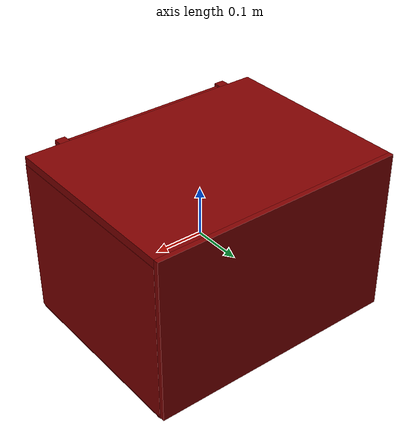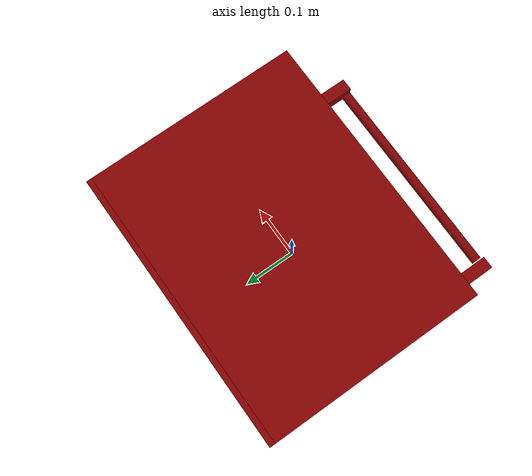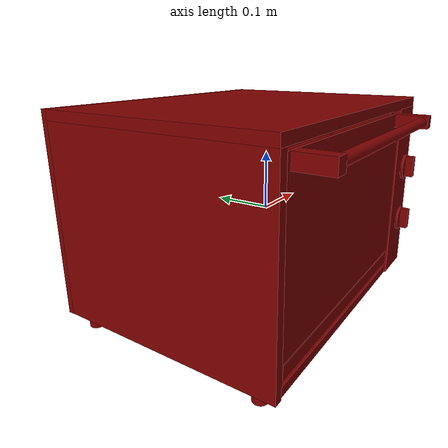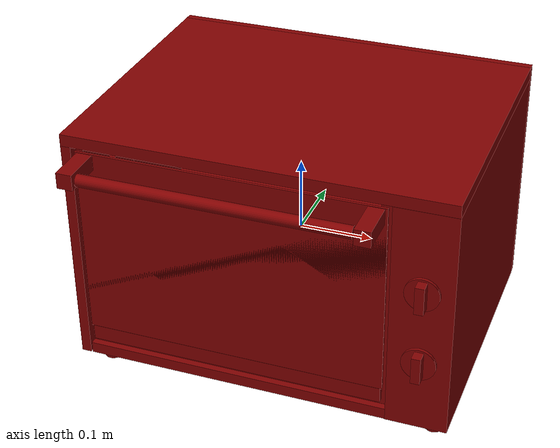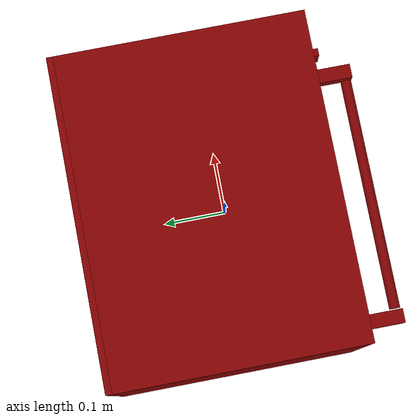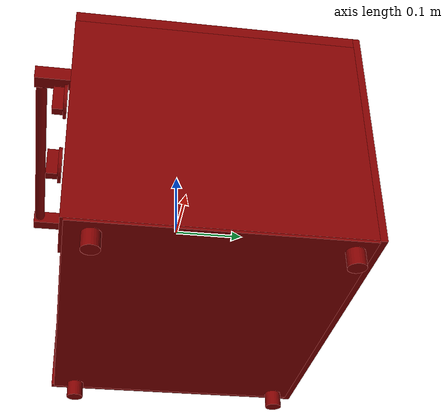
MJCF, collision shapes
<?xml version='1.0' encoding='UTF-8'?>
<mujoco model="model">
  <option timestep="0.002" gravity="0.0 0.0 -9.81"/>
  <compiler angle="radian"/>
  <asset>
    <mesh file="visuals/door.obj" name="door_vis"/>
    <mesh file="visuals/knob_temp.obj" name="knob_temp_vis"/>
    <mesh file="visuals/knob_time.obj" name="knob_time_vis"/>
    <mesh file="visuals/rack0.obj" name="rack0_vis"/>
    <mesh file="visuals/Body001.obj" name="Body001_vis"/>
    <mesh file="visuals/window.obj" name="window_vis"/>
    <texture file="visuals/T_BC001.png" name="Body001_material" type="2d"/>
    <material name="Body001_material" rgba="1 1 1 1.0" texture="Body001_material" shininess="1" specular="1"/>
    <texture file="visuals/T_BC001.png" name="door_material" type="2d"/>
    <material name="door_material" rgba="1 1 1 1.0" texture="door_material" shininess="1" specular="1"/>
    <material name="window_material" rgba="0.027718450874090195 0.027718450874090195 0.027718450874090195 0.75" shininess="0.2512328028678894" specular="0.3103448502657381"/>
    <texture file="visuals/T_BC001.png" name="knob_temp_material" type="2d"/>
    <material name="knob_temp_material" rgba="1 1 1 1.0" texture="knob_temp_material" shininess="0.5" specular="0.5"/>
    <texture file="visuals/T_BC001.png" name="knob_time_material" type="2d"/>
    <material name="knob_time_material" rgba="1 1 1 1.0" texture="knob_time_material" shininess="0.5" specular="0.5"/>
    <texture file="visuals/T_BC001.png" name="rack0_material" type="2d"/>
    <material name="rack0_material" rgba="1 1 1 1.0" texture="rack0_material" shininess="3" specular="3"/>
  </asset>
  <default>
    <default class="visual">
      <geom conaffinity="0" contype="0" group="1" type="mesh"/>
    </default>
    <default class="collision">
      <geom group="0" rgba="0.5 0 0 0.5"/>
    </default>
    <default class="spawn">
      <geom group="0" rgba="1 1 1 0.5" contype="0" conaffinity="0"/>
      <site group="0" rgba="1 1 1 0.5"/>
    </default>
    <default class="region">
      <geom group="1" conaffinity="0" contype="0" rgba="0 1 0 0"/>
    </default>
  </default>
  <worldbody>
    <body>
      <body name="object">
        <geom mesh="Body001_vis" type="mesh" solimp="0.998 0.998 0.001" solref="0.001 1" friction="0.95 0.3 0.1" class="visual" material="Body001_material"/>
        <geom class="collision" type="box" pos="-0.0007457605679519475 0.2223813831806183 0.013563400134444237" size="0.25858113169670105 0.005080300383269787 0.1686781346797943" quat="1.0 0.0 0.0 0.0"/>
        <geom class="collision" type="box" pos="-0.0007457605679519475 0.021873734891414642 0.17399555444717407" size="0.25858113169670105 0.19542735815048218 0.008245944045484066" quat="1.0 0.0 0.0 0.0"/>
        <geom class="collision" type="box" pos="-0.25257155299186707 0.021873734891414642 0.005647214595228434" size="0.006755355279892683 0.19542735815048218 0.16010236740112305" quat="1.0 0.0 0.0 0.0"/>
        <geom class="collision" type="box" pos="0.006009556353092194 0.02381673827767372 -0.14971891045570374" size="0.25182580947875977 0.1934843510389328 0.00789948832243681" quat="1.0 0.0 0.0 0.0"/>
        <geom class="collision" type="box" pos="0.21715101599693298 0.021620839834213257 0.005647215526551008" size="0.041074566543102264 0.19568024575710297 0.16010236740112305" quat="1.0 0.0 0.0 0.0"/>
        <geom class="collision" type="box" pos="-0.24223238229751587 0.028575051575899124 0.005647214595228434" size="0.006755355279892683 0.1887260526418686 0.16010236740112305" quat="1.0 0.0 0.0 0.0"/>
        <geom class="collision" type="box" pos="0.17393207550048828 0.028575051575899124 0.005647214595228434" size="0.014827726408839226 0.1887260526418686 0.16010236740112305" quat="1.0 0.0 0.0 0.0"/>
        <geom class="collision" type="box" pos="-0.03818636015057564 0.028575021773576736 0.16610950231552124" size="0.006755355279892683 0.1887260526418686 0.20359595119953156" quat="0.70710688829422 -4.7503021960437763e-08 0.7071066498756409 4.750300774958305e-08"/>
        <geom class="collision" type="box" pos="-0.03818632289767265 0.028575077652931213 -0.14332428574562073" size="0.010608116164803505 0.1887260526418686 0.20359595119953156" quat="0.70710688829422 -4.7503021960437763e-08 0.7071066498756409 4.750300774958305e-08"/>
        <geom class="collision" type="box" pos="-0.2320302426815033 -0.08677582442760468 0.008008688688278198" size="0.005274172406643629 0.04465195909142494 0.01684456877410412" quat="1.0 0.0 0.0 0.0"/>
        <geom class="collision" type="box" pos="-0.2320302426815033 0.14809246361255646 0.008008688688278198" size="0.005274172406643629 0.04465195909142494 0.01684456877410412" quat="1.0 0.0 0.0 0.0"/>
        <geom class="collision" type="box" pos="-0.2320302426815033 -0.08677582442760468 0.0527912974357605" size="0.005274172406643629 0.04465195909142494 0.01684456877410412" quat="1.0 0.0 0.0 0.0"/>
        <geom class="collision" type="box" pos="-0.2320302426815033 0.14809246361255646 0.0527912974357605" size="0.005274172406643629 0.04465195909142494 0.01684456877410412" quat="1.0 0.0 0.0 0.0"/>
        <geom class="collision" type="box" pos="-0.2320302426815033 -0.0800725668668747 0.09709605574607849" size="0.005274171940982342 0.035627953708171844 0.01684456877410412" quat="1.0 0.0 0.0 0.0"/>
        <geom class="collision" type="box" pos="-0.2320302426815033 0.1364857405424118 0.09709605574607849" size="0.005274171940982342 0.03220980614423752 0.01684456877410412" quat="1.0 0.0 0.0 0.0"/>
        <geom class="collision" type="box" pos="-0.2320302426815033 0.14809246361255646 -0.040287621319293976" size="0.005274172406643629 0.04465195909142494 0.01684456877410412" quat="7.549790126404332e-08 -1.0 -2.220446049250313e-16 -3.8083412071160693e-31"/>
        <geom class="collision" type="box" pos="-0.2320302426815033 -0.08677582442760468 -0.04028766602277756" size="0.005274172406643629 0.04465195909142494 0.01684456877410412" quat="7.549790126404332e-08 -1.0 -2.220446049250313e-16 -3.8083412071160693e-31"/>
        <geom class="collision" type="box" pos="-0.2320302426815033 0.14138920605182648 -0.08459238708019257" size="0.005274171940982342 0.035627953708171844 0.01684456877410412" quat="7.549790126404332e-08 -1.0 -2.220446049250313e-16 -3.8083412071160693e-31"/>
        <geom class="collision" type="box" pos="-0.2320302426815033 -0.07516910135746002 -0.08459241688251495" size="0.005274171940982342 0.03220980614423752 0.01684456877410412" quat="7.549790126404332e-08 -1.0 -2.220446049250313e-16 -3.8083412071160693e-31"/>
        <geom class="collision" type="box" pos="0.15681472420692444 -0.08677582442760468 0.008008688688278198" size="0.005274172406643629 0.04465195909142494 0.01684456877410412" quat="1.0 0.0 0.0 0.0"/>
        <geom class="collision" type="box" pos="0.15681472420692444 0.14809246361255646 0.008008688688278198" size="0.005274172406643629 0.04465195909142494 0.01684456877410412" quat="1.0 0.0 0.0 0.0"/>
        <geom class="collision" type="box" pos="0.15681472420692444 -0.08677582442760468 0.0527912974357605" size="0.005274172406643629 0.04465195909142494 0.01684456877410412" quat="1.0 0.0 0.0 0.0"/>
        <geom class="collision" type="box" pos="0.15681472420692444 0.14809246361255646 0.0527912974357605" size="0.005274172406643629 0.04465195909142494 0.01684456877410412" quat="1.0 0.0 0.0 0.0"/>
        <geom class="collision" type="box" pos="0.15681472420692444 -0.0800725668668747 0.09709605574607849" size="0.005274171940982342 0.035627953708171844 0.01684456877410412" quat="1.0 0.0 0.0 0.0"/>
        <geom class="collision" type="box" pos="0.15681472420692444 0.1364857405424118 0.09709605574607849" size="0.005274171940982342 0.03220980614423752 0.01684456877410412" quat="1.0 0.0 0.0 0.0"/>
        <geom class="collision" type="box" pos="0.15681472420692444 0.14809246361255646 -0.040287621319293976" size="0.005274172406643629 0.04465195909142494 0.01684456877410412" quat="7.549790126404332e-08 -1.0 -2.220446049250313e-16 -3.8083412071160693e-31"/>
        <geom class="collision" type="box" pos="0.15681472420692444 -0.08677582442760468 -0.04028766602277756" size="0.005274172406643629 0.04465195909142494 0.01684456877410412" quat="7.549790126404332e-08 -1.0 -2.220446049250313e-16 -3.8083412071160693e-31"/>
        <geom class="collision" type="box" pos="0.15681472420692444 0.14138920605182648 -0.08459238708019257" size="0.005274171940982342 0.035627953708171844 0.01684456877410412" quat="7.549790126404332e-08 -1.0 -2.220446049250313e-16 -3.8083412071160693e-31"/>
        <geom class="collision" type="box" pos="0.15681472420692444 -0.07516910135746002 -0.08459241688251495" size="0.005274171940982342 0.03220980614423752 0.01684456877410412" quat="7.549790126404332e-08 -1.0 -2.220446049250313e-16 -3.8083412071160693e-31"/>
        <geom class="collision" type="cylinder" pos="0.23314112424850464 -0.1350851207971573 -0.16843682527542114" size="0.01263634953647852 0.01263634953647852" quat="1.0 0.0 0.0 0.0"/>
        <geom class="collision" type="cylinder" pos="0.23314112424850464 0.19284166395664215 -0.16843682527542114" size="0.01263634953647852 0.01263634953647852" quat="1.0 0.0 0.0 0.0"/>
        <geom class="collision" type="cylinder" pos="-0.23202680051326752 -0.1350851207971573 -0.16843682527542114" size="0.01263634953647852 0.01263634953647852" quat="1.0 0.0 0.0 0.0"/>
        <geom class="collision" type="cylinder" pos="-0.23202680051326752 0.19284166395664215 -0.16843682527542114" size="0.01263634953647852 0.01263634953647852" quat="1.0 0.0 0.0 0.0"/>
        <body name="door">
          <joint axis="1.0 0.0 0.0" pos="-0.03550801798701286 -0.17055195569992065 -0.1321888566017151" limited="true" name="door_joint" range="0.0 1.5207963267948966" type="hinge" damping="1" frictionloss="1" armature=".01" stiffness="0.3" springref="-0.5"/>
          <geom mesh="door_vis" type="mesh" solimp="0.998 0.998 0.001" solref="0.001 1" friction="0.95 0.3 0.1" class="visual" material="door_material"/>
          <geom class="collision" type="box" pos="-0.22663548588752747 -0.20014287531375885 0.1489257514476776" size="0.010634053498506546 0.02738959528505802 0.010810812935233116" quat="1.0 0.0 0.0 0.0"/>
          <geom class="collision" type="box" pos="-0.035523295402526855 -0.17022232711315155 0.026837583631277084" size="0.20578330755233765 0.001694351900368929 0.13300904631614685" quat="1.0 0.0 0.0 0.0" name="door_main"/>
          <geom class="collision" type="box" pos="-0.035529397428035736 -0.16755510866641998 -0.11987552046775818" size="0.20355837047100067 0.0039117601700127125 0.010819010436534882" quat="1.0 0.0 0.0 0.0"/>
          <geom class="collision" type="box" pos="0.157125785946846 -0.16322770714759827 0.013051362708210945" size="0.010897890664637089 0.00302733457647264 0.12345529347658157" quat="1.0 0.0 0.0 0.0"/>
          <geom class="collision" type="box" pos="-0.22930143773555756 -0.16346098482608795 0.013342125341296196" size="0.010897873900830746 0.0032606085296720266 0.12316428124904633" quat="1.0 0.0 0.0 0.0"/>
          <geom class="collision" type="box" pos="0.15634441375732422 -0.20014287531375885 0.1489257514476776" size="0.010634053498506546 0.02738959528505802 0.010810812935233116" quat="1.0 0.0 0.0 0.0"/>
          <geom class="collision" type="cylinder" pos="-0.035306405276060104 -0.21748393774032593 0.1489209532737732" size="0.008244296535849571 0.17818868160247803" quat="0.49999985098838806 0.5000000596046448 -0.5000001192092896 -0.4999999403953552" name="door_handle_main"/>
          <body name="window">
            <geom mesh="window_vis" type="mesh" solimp="0.998 0.998 0.001" solref="0.001 1" friction="0.95 0.3 0.1" class="visual" material="window_material"/>
            <geom class="collision" type="box" pos="-0.035523295402526855 -0.17022232711315155 0.012841779738664627" size="0.20578330755233765 0.001694351900368929 0.12130924314260483" quat="1.0 0.0 0.0 0.0"/>
          </body>
        </body>
        <body name="knob_temp">
          <joint axis="0.0 1.0 0.0" pos="0.21950900554656982 -0.18339461088180542 0.054784879088401794" limited="true" name="knob_temp_joint" range="0.0 4.799655442984406" type="hinge" damping="0.05" armature="1" frictionloss="0.75"/>
          <geom mesh="knob_temp_vis" type="mesh" solimp="0.998 0.998 0.001" solref="0.001 1" friction="0.95 0.3 0.1" class="visual" material="knob_temp_material"/>
          <geom class="collision" type="cylinder" pos="0.21832531690597534 -0.17927969992160797 0.054403625428676605" size="0.02282606065273285 0.0021433064248412848" quat="0.7071067094802856 0.70710688829422 0.0 0.0" friction="100 0.5 0.01"/>
          <geom class="collision" type="box" pos="0.21892495453357697 -0.1887698769569397 0.05496830493211746" size="0.006072560325264931 0.007540433201938868 0.019012343138456345" quat="1.0 0.0 0.0 0.0" name="knob_temp_main" friction="100 0.5 0.01"/>
        </body>
        <body name="knob_time">
          <joint axis="0.0 1.0 0.0" pos="0.21945226192474365 -0.18315675854682922 -0.05014054477214813" limited="true" name="knob_time_joint" range="0.0 3.979350694547071" type="hinge" damping="0.05" armature="1" frictionloss="0.75"/>
          <geom mesh="knob_time_vis" type="mesh" solimp="0.998 0.998 0.001" solref="0.001 1" friction="0.95 0.3 0.1" class="visual" material="knob_time_material"/>
          <geom class="collision" type="cylinder" pos="0.21832531690597534 -0.17927969992160797 -0.05019652098417282" size="0.02282606065273285 0.0021433064248412848" quat="0.7071067094802856 0.70710688829422 0.0 0.0" friction="100 0.5 0.01"/>
          <geom class="collision" type="box" pos="0.21892495453357697 -0.1887698769569397 -0.049632009118795395" size="0.006072559859603643 0.007540433201938868 0.018874872475862503" quat="1.0 0.0 0.0 0.0" name="knob_time_main" friction="100 0.5 0.01"/>
        </body>
        <body name="rack0">
          <geom class="region" name="reg_rack0" type="box" pos="-0.0364532396197319 0.026415474712848663 0.06432279292494059" size="0.17270201987028122 0.17010190135240555 0.07933293732255697"/>
          <joint axis="0.0 -1.0 0.0" pos="-0.037293076515197754 0.025815170258283615 -0.01776137202978134" limited="true" name="rack0_joint" range="0.0 0.25" type="slide" damping="1" frictionloss="1" armature=".01" stiffness="0.05"/>
          <geom mesh="rack0_vis" type="mesh" solimp="0.998 0.998 0.001" solref="0.001 1" friction="0.95 0.3 0.1" class="visual" material="rack0_material"/>
          <geom class="collision" type="box" pos="-0.038459669798612595 0.0270799919962883 -0.01833948865532875" size="0.1945507973432541 0.17155130207538605 0.002026360249146819" quat="1.0 0.0 0.0 0.0"/>
        </body>
        <geom class="region" name="reg_main" type="box" pos="0.0 0.026120826601982117 0.0" size="0.26032687520980835 0.2023428807258606 0.1832415292263031"/>
      </body>
    </body>
  </worldbody>
  <actuator>
    <motor name="door_joint_actuator" joint="door_joint" gear="50"/>
    <motor name="knob_temp_joint_actuator" joint="knob_temp_joint" gear="50"/>
    <motor name="knob_time_joint_actuator" joint="knob_time_joint" gear="50"/>
    <motor name="rack0_joint_actuator" joint="rack0_joint" gear="50"/>
  </actuator>
</mujoco>
